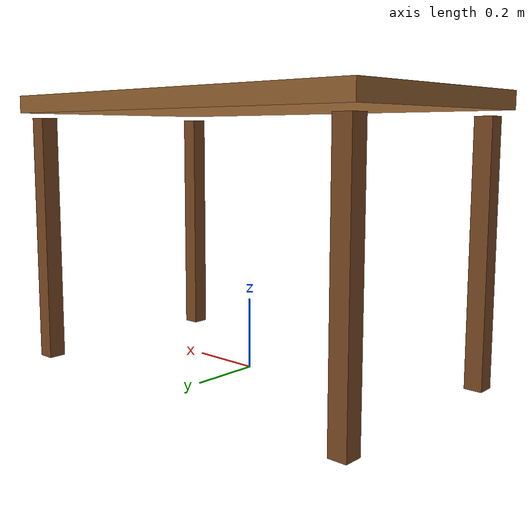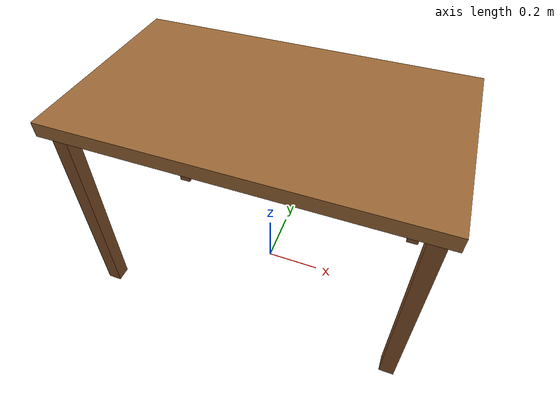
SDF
<?xml version="1.0" ?>
<sdf version="1.6">
  <model name="mesa">
    <static>true</static>

    <!-- Tampa da mesa -->
    <link name="tampo">
      <pose>0 0 0.75 0 0 0</pose>

      <visual name="visual_tampo">
        <geometry>
          <box>
            <size>1.2 0.7 0.05</size>
          </box>
        </geometry>
        <material>
          <ambient>0.6 0.4 0.2 1</ambient>
          <diffuse>0.6 0.4 0.2 1</diffuse>
          <specular>0.1 0.1 0.1 1</specular>
        </material>
      </visual>

      <collision name="colisao_tampo">
        <geometry>
          <box>
            <size>1.2 0.7 0.05</size>
          </box>
        </geometry>
        <surface>
          <friction>
            <ode>
              <mu>0.8</mu>
              <mu2>0.8</mu2>
            </ode>
          </friction>
          <contact>
            <ode>
              <kp>1e6</kp>
              <kd>1.0</kd>
            </ode>
          </contact>
        </surface>
      </collision>

      <inertial>
        <mass>10.0</mass>
        <inertia>
          <ixx>0.43</ixx>
          <iyy>1.24</iyy>
          <izz>1.65</izz>
          <ixy>0</ixy>
          <ixz>0</ixz>
          <iyz>0</iyz>
        </inertia>
      </inertial>
    </link>

    <!-- Perna dianteira esquerda -->
    <link name="perna_DE">
      <pose>-0.55 -0.30 0.35 0 0 0</pose>

      <visual name="visual_perna_DE">
        <geometry>
          <box>
            <size>0.05 0.05 0.72</size>
          </box>
        </geometry>
        <material>
          <ambient>0.5 0.3 0.15 1</ambient>
          <diffuse>0.5 0.3 0.15 1</diffuse>
        </material>
      </visual>

      <collision name="colisao_perna_DE">
        <geometry>
          <box>
            <size>0.05 0.05 0.72</size>
          </box>
        </geometry>
      </collision>

      <inertial>
        <mass>1.5</mass>
        <inertia>
          <ixx>0.065</ixx>
          <iyy>0.065</iyy>
          <izz>0.001</izz>
        </inertia>
      </inertial>
    </link>

    <!-- Perna dianteira direita -->
    <link name="perna_DD">
      <pose>-0.55 0.30 0.35 0 0 0</pose>

      <visual name="visual_perna_DD">
        <geometry>
          <box>
            <size>0.05 0.05 0.72</size>
          </box>
        </geometry>
        <material>
          <ambient>0.5 0.3 0.15 1</ambient>
          <diffuse>0.5 0.3 0.15 1</diffuse>
        </material>
      </visual>

      <collision name="colisao_perna_DD">
        <geometry>
          <box>
            <size>0.05 0.05 0.72</size>
          </box>
        </geometry>
      </collision>

      <inertial>
        <mass>1.5</mass>
        <inertia>
          <ixx>0.065</ixx>
          <iyy>0.065</iyy>
          <izz>0.001</izz>
        </inertia>
      </inertial>
    </link>

    <!-- Perna traseira esquerda -->
    <link name="perna_TE">
      <pose>0.55 -0.30 0.35 0 0 0</pose>

      <visual name="visual_perna_TE">
        <geometry>
          <box>
            <size>0.05 0.05 0.72</size>
          </box>
        </geometry>
        <material>
          <ambient>0.5 0.3 0.15 1</ambient>
          <diffuse>0.5 0.3 0.15 1</diffuse>
        </material>
      </visual>

      <collision name="colisao_perna_TE">
        <geometry>
          <box>
            <size>0.05 0.05 0.72</size>
          </box>
        </geometry>
      </collision>

      <inertial>
        <mass>1.5</mass>
        <inertia>
          <ixx>0.065</ixx>
          <iyy>0.065</iyy>
          <izz>0.001</izz>
        </inertia>
      </inertial>
    </link>

    <!-- Perna traseira direita -->
    <link name="perna_TD">
      <pose>0.55 0.30 0.35 0 0 0</pose>

      <visual name="visual_perna_TD">
        <geometry>
          <box>
            <size>0.05 0.05 0.72</size>
          </box>
        </geometry>
        <material>
          <ambient>0.5 0.3 0.15 1</ambient>
          <diffuse>0.5 0.3 0.15 1</diffuse>
        </material>
      </visual>

      <collision name="colisao_perna_TD">
        <geometry>
          <box>
            <size>0.05 0.05 0.72</size>
          </box>
        </geometry>
      </collision>

      <inertial>
        <mass>1.5</mass>
        <inertia>
          <ixx>0.065</ixx>
          <iyy>0.065</iyy>
          <izz>0.001</izz>
        </inertia>
      </inertial>
    </link>

    <!-- Junções fixas entre tampo e pernas -->
    <joint name="junta_perna_DE" type="fixed">
      <parent>tampo</parent>
      <child>perna_DE</child>
    </joint>

    <joint name="junta_perna_DD" type="fixed">
      <parent>tampo</parent>
      <child>perna_DD</child>
    </joint>

    <joint name="junta_perna_TE" type="fixed">
      <parent>tampo</parent>
      <child>perna_TE</child>
    </joint>

    <joint name="junta_perna_TD" type="fixed">
      <parent>tampo</parent>
      <child>perna_TD</child>
    </joint>

  </model>
</sdf>
